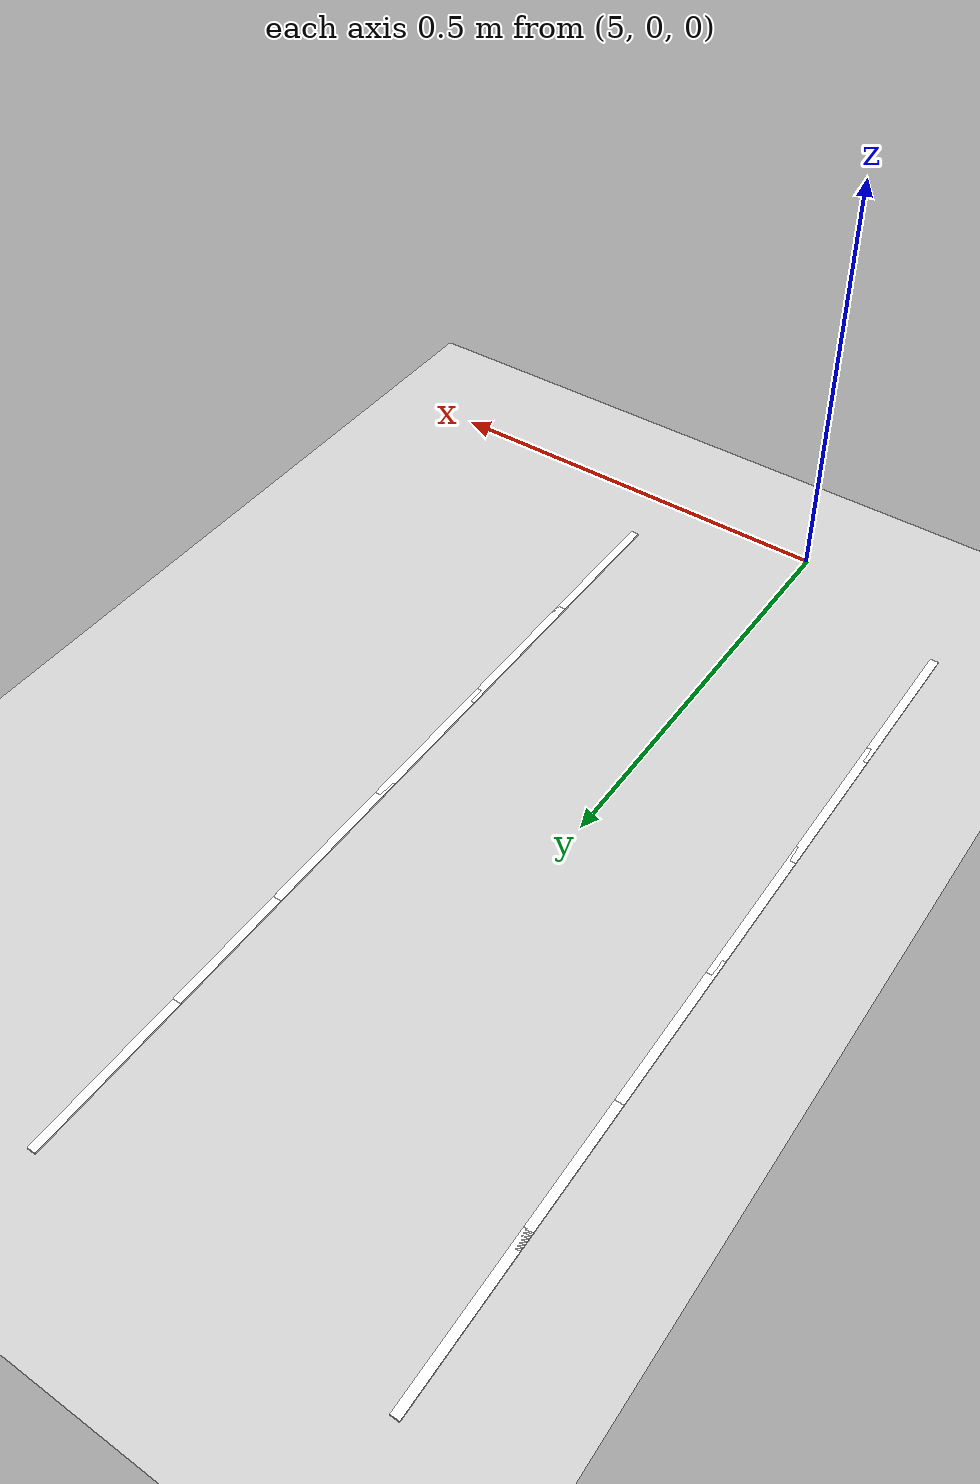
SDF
<sdf version="1.7">
 <world name="default">
  <model name="ground_plane">
   <static>1</static>
   <link name="link">
    <collision name="collision">
     <geometry><plane><normal>0 0 1</normal><size>100 100</size></plane></geometry>
     <surface>
      <contact><collide_bitmask>65535</collide_bitmask></contact>
      <friction><ode><mu>100</mu><mu2>50</mu2></ode></friction>
     </surface>
    </collision>
    <visual name="visual">
     <cast_shadows>0</cast_shadows>
     <geometry><plane><normal>0 0 1</normal><size>100 100</size></plane></geometry>
     <material>
      <script><uri>file://media/materials/scripts/gazebo.material</uri><name>Gazebo/Grey</name></script>
     </material>
    </visual>
   </link>
  </model>
  <model name="lane_line_left_125">
   <static>1</static>
   <link name="link">
    <pose>0 0 -0.004 0 -0 0</pose>
    <visual name="visual">
     <geometry><box><size>0.1833 0.01 0.01</size></box></geometry>
     <material><ambient>1 1 1 1</ambient><diffuse>1 1 1 1</diffuse></material>
    </visual>
    <collision name="collision"><geometry><box><size>0.1833 0.01 0.01</size></box></geometry></collision>
   </link>
   <pose>4.8 0.163265 0 0 -0 1.5708</pose>
  </model>
  <model name="lane_line_right_125">
   <static>1</static>
   <link name="link">
    <pose>0 0 -0.004 0 -0 0</pose>
    <visual name="visual">
     <geometry><box><size>0.1833 0.01 0.01</size></box></geometry>
     <material><ambient>1 1 1 1</ambient><diffuse>1 1 1 1</diffuse></material>
    </visual>
    <collision name="collision"><geometry><box><size>0.1833 0.01 0.01</size></box></geometry></collision>
   </link>
   <pose>5.2 0.163265 0 0 -0 1.5708</pose>
  </model>
  <model name="lane_line_left_126">
   <static>1</static>
   <link name="link">
    <pose>0 0 -0.004 0 -0 0</pose>
    <visual name="visual">
     <geometry><box><size>0.1833 0.01 0.01</size></box></geometry>
     <material><ambient>1 1 1 1</ambient><diffuse>1 1 1 1</diffuse></material>
    </visual>
    <collision name="collision"><geometry><box><size>0.1833 0.01 0.01</size></box></geometry></collision>
   </link>
   <pose>4.8 0.326531 0 0 -0 1.5708</pose>
  </model>
  <model name="lane_line_right_126">
   <static>1</static>
   <link name="link">
    <pose>0 0 -0.004 0 -0 0</pose>
    <visual name="visual">
     <geometry><box><size>0.1833 0.01 0.01</size></box></geometry>
     <material><ambient>1 1 1 1</ambient><diffuse>1 1 1 1</diffuse></material>
    </visual>
    <collision name="collision"><geometry><box><size>0.1833 0.01 0.01</size></box></geometry></collision>
   </link>
   <pose>5.2 0.326531 0 0 -0 1.5708</pose>
  </model>
  <model name="lane_line_left_127">
   <static>1</static>
   <link name="link">
    <pose>0 0 -0.004 0 -0 0</pose>
    <visual name="visual">
     <geometry><box><size>0.1833 0.01 0.01</size></box></geometry>
     <material><ambient>1 1 1 1</ambient><diffuse>1 1 1 1</diffuse></material>
    </visual>
    <collision name="collision"><geometry><box><size>0.1833 0.01 0.01</size></box></geometry></collision>
   </link>
   <pose>4.8 0.489796 0 0 -0 1.5708</pose>
  </model>
  <model name="lane_line_right_127">
   <static>1</static>
   <link name="link">
    <pose>0 0 -0.004 0 -0 0</pose>
    <visual name="visual">
     <geometry><box><size>0.1833 0.01 0.01</size></box></geometry>
     <material><ambient>1 1 1 1</ambient><diffuse>1 1 1 1</diffuse></material>
    </visual>
    <collision name="collision"><geometry><box><size>0.1833 0.01 0.01</size></box></geometry></collision>
   </link>
   <pose>5.2 0.489796 0 0 -0 1.5708</pose>
  </model>
  <model name="lane_line_left_128">
   <static>1</static>
   <link name="link">
    <pose>0 0 -0.004 0 -0 0</pose>
    <visual name="visual">
     <geometry><box><size>0.1833 0.01 0.01</size></box></geometry>
     <material><ambient>1 1 1 1</ambient><diffuse>1 1 1 1</diffuse></material>
    </visual>
    <collision name="collision"><geometry><box><size>0.1833 0.01 0.01</size></box></geometry></collision>
   </link>
   <pose>4.8 0.653061 0 0 -0 1.5708</pose>
  </model>
  <model name="lane_line_right_128">
   <static>1</static>
   <link name="link">
    <pose>0 0 -0.004 0 -0 0</pose>
    <visual name="visual">
     <geometry><box><size>0.1833 0.01 0.01</size></box></geometry>
     <material><ambient>1 1 1 1</ambient><diffuse>1 1 1 1</diffuse></material>
    </visual>
    <collision name="collision"><geometry><box><size>0.1833 0.01 0.01</size></box></geometry></collision>
   </link>
   <pose>5.2 0.653061 0 0 -0 1.5708</pose>
  </model>
  <model name="lane_line_left_129">
   <static>1</static>
   <link name="link">
    <pose>0 0 -0.004 0 -0 0</pose>
    <visual name="visual">
     <geometry><box><size>0.1833 0.01 0.01</size></box></geometry>
     <material><ambient>1 1 1 1</ambient><diffuse>1 1 1 1</diffuse></material>
    </visual>
    <collision name="collision"><geometry><box><size>0.1833 0.01 0.01</size></box></geometry></collision>
   </link>
   <pose>4.8 0.816327 0 0 -0 1.5708</pose>
  </model>
  <model name="lane_line_right_129">
   <static>1</static>
   <link name="link">
    <pose>0 0 -0.004 0 -0 0</pose>
    <visual name="visual">
     <geometry><box><size>0.1833 0.01 0.01</size></box></geometry>
     <material><ambient>1 1 1 1</ambient><diffuse>1 1 1 1</diffuse></material>
    </visual>
    <collision name="collision"><geometry><box><size>0.1833 0.01 0.01</size></box></geometry></collision>
   </link>
   <pose>5.2 0.816327 0 0 -0 1.5708</pose>
  </model>
  <model name="lane_line_left_130">
   <static>1</static>
   <link name="link">
    <pose>0 0 -0.004 0 -0 0</pose>
    <visual name="visual">
     <geometry><box><size>0.1833 0.01 0.01</size></box></geometry>
     <material><ambient>1 1 1 1</ambient><diffuse>1 1 1 1</diffuse></material>
    </visual>
    <collision name="collision"><geometry><box><size>0.1833 0.01 0.01</size></box></geometry></collision>
   </link>
   <pose>4.8 0.979592 0 0 -0 1.5708</pose>
  </model>
  <model name="lane_line_right_130">
   <static>1</static>
   <link name="link">
    <pose>0 0 -0.004 0 -0 0</pose>
    <visual name="visual">
     <geometry><box><size>0.1833 0.01 0.01</size></box></geometry>
     <material><ambient>1 1 1 1</ambient><diffuse>1 1 1 1</diffuse></material>
    </visual>
    <collision name="collision"><geometry><box><size>0.1833 0.01 0.01</size></box></geometry></collision>
   </link>
   <pose>5.2 0.979592 0 0 -0 1.5708</pose>
  </model>
 </world>
</sdf>
